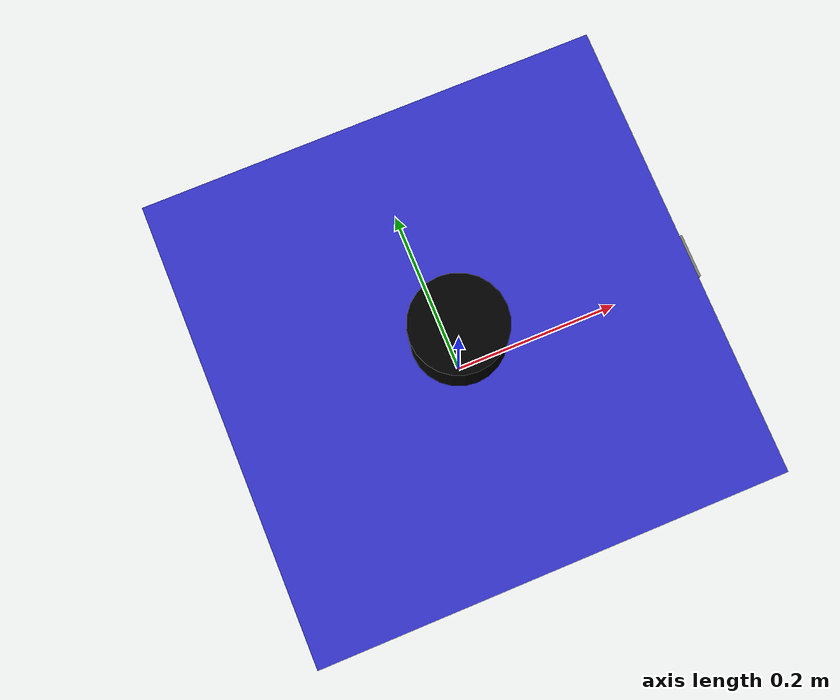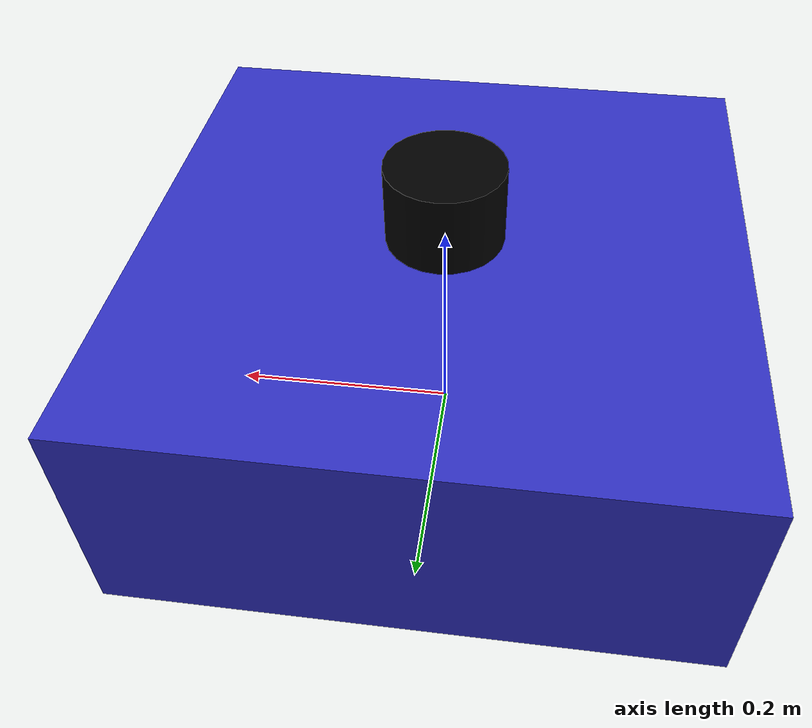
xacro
<?xml version="1.0"?>
<robot xmlns:xacro="http://www.ros.org/wiki/xacro" name="aura">

  <!-- Include materials -->
  <xacro:include filename="$(find aura_simulation)/urdf/materials.xacro"/>

  <!-- Robot properties -->
  <xacro:property name="base_width" value="0.5"/>
  <xacro:property name="base_length" value="0.5"/>
  <xacro:property name="base_height" value="0.2"/>
  <xacro:property name="base_mass" value="5.0"/>

  <xacro:property name="wheel_radius" value="0.1"/>
  <xacro:property name="wheel_width" value="0.04"/>
  <xacro:property name="wheel_separation" value="0.4"/>
  <xacro:property name="wheel_mass" value="1.0"/>

  <xacro:property name="caster_radius" value="0.05"/>
  <xacro:property name="caster_mass" value="0.5"/>

  <xacro:property name="lidar_radius" value="0.05"/>
  <xacro:property name="lidar_height" value="0.07"/>
  <xacro:property name="lidar_mass" value="0.2"/>

  <!-- Macro for wheel inertia -->
  <xacro:macro name="cylinder_inertia" params="m r h">
    <inertia ixx="${m*(3*r*r+h*h)/12}" ixy="0" ixz="0"
             iyy="${m*(3*r*r+h*h)/12}" iyz="0"
             izz="${m*r*r/2}"/>
  </xacro:macro>

  <!-- Macro for box inertia -->
  <xacro:macro name="box_inertia" params="m x y z">
    <inertia ixx="${m*(y*y+z*z)/12}" ixy="0" ixz="0"
             iyy="${m*(x*x+z*z)/12}" iyz="0"
             izz="${m*(x*x+y*y)/12}"/>
  </xacro:macro>

  <!-- Base Link -->
  <link name="base_link">
    <visual>
      <origin xyz="0 0 ${base_height/2}" rpy="0 0 0"/>
      <geometry>
        <box size="${base_length} ${base_width} ${base_height}"/>
      </geometry>
      <material name="robot_base_color"/>
    </visual>
    <collision>
      <origin xyz="0 0 ${base_height/2}" rpy="0 0 0"/>
      <geometry>
        <box size="${base_length} ${base_width} ${base_height}"/>
      </geometry>
    </collision>
    <inertial>
      <origin xyz="0 0 ${base_height/2}" rpy="0 0 0"/>
      <mass value="${base_mass}"/>
      <xacro:box_inertia m="${base_mass}" x="${base_length}" y="${base_width}" z="${base_height}"/>
    </inertial>
  </link>

  <!-- Left Wheel -->
  <link name="left_wheel">
    <visual>
      <origin xyz="0 0 0" rpy="${pi/2} 0 0"/>
      <geometry>
        <cylinder radius="${wheel_radius}" length="${wheel_width}"/>
      </geometry>
      <material name="wheel_color"/>
    </visual>
    <collision>
      <origin xyz="0 0 0" rpy="${pi/2} 0 0"/>
      <geometry>
        <cylinder radius="${wheel_radius}" length="${wheel_width}"/>
      </geometry>
    </collision>
    <inertial>
      <origin xyz="0 0 0" rpy="${pi/2} 0 0"/>
      <mass value="${wheel_mass}"/>
      <xacro:cylinder_inertia m="${wheel_mass}" r="${wheel_radius}" h="${wheel_width}"/>
    </inertial>
  </link>

  <!-- Right Wheel -->
  <link name="right_wheel">
    <visual>
      <origin xyz="0 0 0" rpy="${pi/2} 0 0"/>
      <geometry>
        <cylinder radius="${wheel_radius}" length="${wheel_width}"/>
      </geometry>
      <material name="wheel_color"/>
    </visual>
    <collision>
      <origin xyz="0 0 0" rpy="${pi/2} 0 0"/>
      <geometry>
        <cylinder radius="${wheel_radius}" length="${wheel_width}"/>
      </geometry>
    </collision>
    <inertial>
      <origin xyz="0 0 0" rpy="${pi/2} 0 0"/>
      <mass value="${wheel_mass}"/>
      <xacro:cylinder_inertia m="${wheel_mass}" r="${wheel_radius}" h="${wheel_width}"/>
    </inertial>
  </link>

  <!-- Caster Wheel -->
  <link name="caster_wheel">
    <visual>
      <origin xyz="0 0 0" rpy="0 0 0"/>
      <geometry>
        <sphere radius="${caster_radius}"/>
      </geometry>
      <material name="caster_color"/>
    </visual>
    <collision>
      <origin xyz="0 0 0" rpy="0 0 0"/>
      <geometry>
        <sphere radius="${caster_radius}"/>
      </geometry>
    </collision>
    <inertial>
      <origin xyz="0 0 0" rpy="0 0 0"/>
      <mass value="${caster_mass}"/>
      <inertia ixx="${2*caster_mass*caster_radius*caster_radius/5}" ixy="0" ixz="0"
               iyy="${2*caster_mass*caster_radius*caster_radius/5}" iyz="0"
               izz="${2*caster_mass*caster_radius*caster_radius/5}"/>
    </inertial>
  </link>

  <!-- Lidar Link -->
  <link name="lidar_link">
    <visual>
      <origin xyz="0 0 0" rpy="0 0 0"/>
      <geometry>
        <cylinder radius="${lidar_radius}" length="${lidar_height}"/>
      </geometry>
      <material name="lidar_color"/>
    </visual>
    <collision>
      <origin xyz="0 0 0" rpy="0 0 0"/>
      <geometry>
        <cylinder radius="${lidar_radius}" length="${lidar_height}"/>
      </geometry>
    </collision>
    <inertial>
      <origin xyz="0 0 0" rpy="0 0 0"/>
      <mass value="${lidar_mass}"/>
      <xacro:cylinder_inertia m="${lidar_mass}" r="${lidar_radius}" h="${lidar_height}"/>
    </inertial>
  </link>

  <!-- Camera Link -->
  <link name="camera_link">
    <visual>
      <origin xyz="0 0 0" rpy="0 0 0"/>
      <geometry>
        <box size="0.05 0.05 0.05"/>
      </geometry>
      <material name="camera_color"/>
    </visual>
    <collision>
      <origin xyz="0 0 0" rpy="0 0 0"/>
      <geometry>
        <box size="0.05 0.05 0.05"/>
      </geometry>
    </collision>
    <inertial>
      <origin xyz="0 0 0" rpy="0 0 0"/>
      <mass value="0.1"/>
      <xacro:box_inertia m="0.1" x="0.05" y="0.05" z="0.05"/>
    </inertial>
  </link>

  <!-- Joints -->

  <!-- Left Wheel Joint -->
  <joint name="left_wheel_joint" type="continuous">
    <parent link="base_link"/>
    <child link="left_wheel"/>
    <origin xyz="0.0 ${wheel_separation/2} ${wheel_radius}" rpy="0 0 0"/>
    <axis xyz="0 1 0"/>
  </joint>

  <!-- Right Wheel Joint -->
  <joint name="right_wheel_joint" type="continuous">
    <parent link="base_link"/>
    <child link="right_wheel"/>
    <origin xyz="0.0 ${-wheel_separation/2} ${wheel_radius}" rpy="0 0 0"/>
    <axis xyz="0 1 0"/>
  </joint>

  <!-- Caster Wheel Joint -->
  <joint name="caster_wheel_joint" type="fixed">
    <parent link="base_link"/>
    <child link="caster_wheel"/>
    <origin xyz="${-base_length/2 + caster_radius} 0 ${caster_radius}" rpy="0 0 0"/>
  </joint>

  <!-- Lidar Joint -->
  <joint name="lidar_joint" type="fixed">
    <parent link="base_link"/>
    <child link="lidar_link"/>
    <origin xyz="0 0 ${base_height + lidar_height/2}" rpy="0 0 0"/>
  </joint>

  <!-- Camera Joint -->
  <joint name="camera_joint" type="fixed">
    <parent link="base_link"/>
    <child link="camera_link"/>
    <origin xyz="${base_length/2} 0 ${base_height/2}" rpy="0 0 0"/>
  </joint>

  <!-- Gazebo plugins and properties -->

  <!-- Base link gazebo properties -->
  <gazebo reference="base_link">
    <material>Gazebo/Blue</material>
  </gazebo>

  <!-- Wheel gazebo properties -->
  <gazebo reference="left_wheel">
    <material>Gazebo/Black</material>
    <mu1>0.8</mu1>
    <mu2>0.8</mu2>
  </gazebo>

  <gazebo reference="right_wheel">
    <material>Gazebo/Black</material>
    <mu1>0.8</mu1>
    <mu2>0.8</mu2>
  </gazebo>

  <gazebo reference="caster_wheel">
    <material>Gazebo/Grey</material>
    <mu1>0.1</mu1>
    <mu2>0.1</mu2>
  </gazebo>

  <gazebo reference="lidar_link">
    <material>Gazebo/Black</material>
  </gazebo>

  <gazebo reference="camera_link">
    <material>Gazebo/Grey</material>
  </gazebo>

  <!-- Differential Drive Plugin -->
  <gazebo>
    <plugin name="differential_drive_controller" filename="libgazebo_ros_diff_drive.so">
      <ros>
        <namespace>/aura</namespace>
      </ros>
      <update_rate>50</update_rate>
      <left_joint>left_wheel_joint</left_joint>
      <right_joint>right_wheel_joint</right_joint>
      <wheel_separation>${wheel_separation}</wheel_separation>
      <wheel_diameter>${2*wheel_radius}</wheel_diameter>
      <max_wheel_torque>10</max_wheel_torque>
      <max_wheel_acceleration>1.0</max_wheel_acceleration>
      <command_topic>cmd_vel</command_topic>
      <odometry_topic>odom</odometry_topic>
      <odometry_frame>odom</odometry_frame>
      <robot_base_frame>base_link</robot_base_frame>
      <publish_odom>true</publish_odom>
      <publish_odom_tf>true</publish_odom_tf>
      <publish_wheel_tf>false</publish_wheel_tf>
    </plugin>
  </gazebo>

  <!-- Lidar Plugin -->
  <gazebo reference="lidar_link">
    <sensor type="ray" name="lidar_sensor">
      <pose>0 0 0 0 0 0</pose>
      <visualize>true</visualize>
      <update_rate>20</update_rate>
      <ray>
        <scan>
          <horizontal>
            <samples>360</samples>
            <resolution>1</resolution>
            <min_angle>-3.14159</min_angle>
            <max_angle>3.14159</max_angle>
          </horizontal>
        </scan>
        <range>
          <min>0.1</min>
          <max>10.0</max>
          <resolution>0.01</resolution>
        </range>
        <noise>
          <type>gaussian</type>
          <mean>0.0</mean>
          <stddev>0.01</stddev>
        </noise>
      </ray>
      <plugin name="gazebo_ros_lidar_controller" filename="libgazebo_ros_ray_sensor.so">
        <ros>
          <namespace>/aura</namespace>
          <remapping>~/out:=scan</remapping>
        </ros>
        <output_type>sensor_msgs/LaserScan</output_type>
        <frame_name>lidar_link</frame_name>
      </plugin>
    </sensor>
  </gazebo>

  <!-- Camera Plugin -->
  <gazebo reference="camera_link">
    <sensor type="camera" name="camera_sensor">
      <update_rate>30.0</update_rate>
      <camera name="camera">
        <horizontal_fov>1.3962634</horizontal_fov>
        <image>
          <width>800</width>
          <height>600</height>
          <format>R8G8B8</format>
        </image>
        <clip>
          <near>0.02</near>
          <far>300</far>
        </clip>
      </camera>
      <plugin name="camera_controller" filename="libgazebo_ros_camera.so">
        <ros>
          <namespace>/aura</namespace>
          <remapping>image_raw:=camera/image_raw</remapping>
          <remapping>camera_info:=camera/camera_info</remapping>
        </ros>
        <camera_name>camera</camera_name>
        <frame_name>camera_link</frame_name>
        <hack_baseline>0.07</hack_baseline>
      </plugin>
    </sensor>
  </gazebo>

</robot>

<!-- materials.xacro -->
<robot xmlns:xacro="http://www.ros.org/wiki/xacro">

  <!-- Material definitions for AURA robot -->

  <!-- Robot base material -->
  <material name="robot_base_color">
    <color rgba="0.2 0.2 0.8 1.0"/>
  </material>

  <!-- Wheel material -->
  <material name="wheel_color">
    <color rgba="0.1 0.1 0.1 1.0"/>
  </material>

  <!-- Lidar material -->
  <material name="lidar_color">
    <color rgba="0.0 0.0 0.0 1.0"/>
  </material>

  <!-- Camera material -->
  <material name="camera_color">
    <color rgba="0.5 0.5 0.5 1.0"/>
  </material>

  <!-- Caster wheel material -->
  <material name="caster_color">
    <color rgba="0.6 0.6 0.6 1.0"/>
  </material>

  <!-- Metal material -->
  <material name="metal">
    <color rgba="0.7 0.7 0.7 1.0"/>
  </material>

  <!-- Red material -->
  <material name="red">
    <color rgba="1.0 0.0 0.0 1.0"/>
  </material>

  <!-- Green material -->
  <material name="green">
    <color rgba="0.0 1.0 0.0 1.0"/>
  </material>

  <!-- Blue material -->
  <material name="blue">
    <color rgba="0.0 0.0 1.0 1.0"/>
  </material>

</robot>
